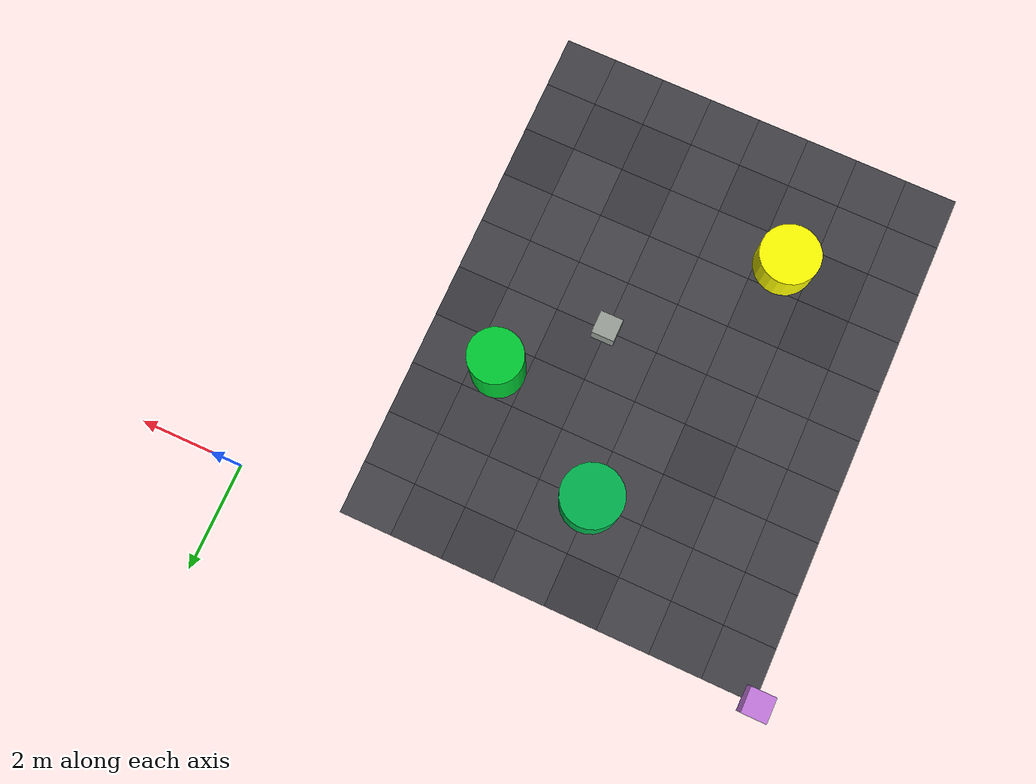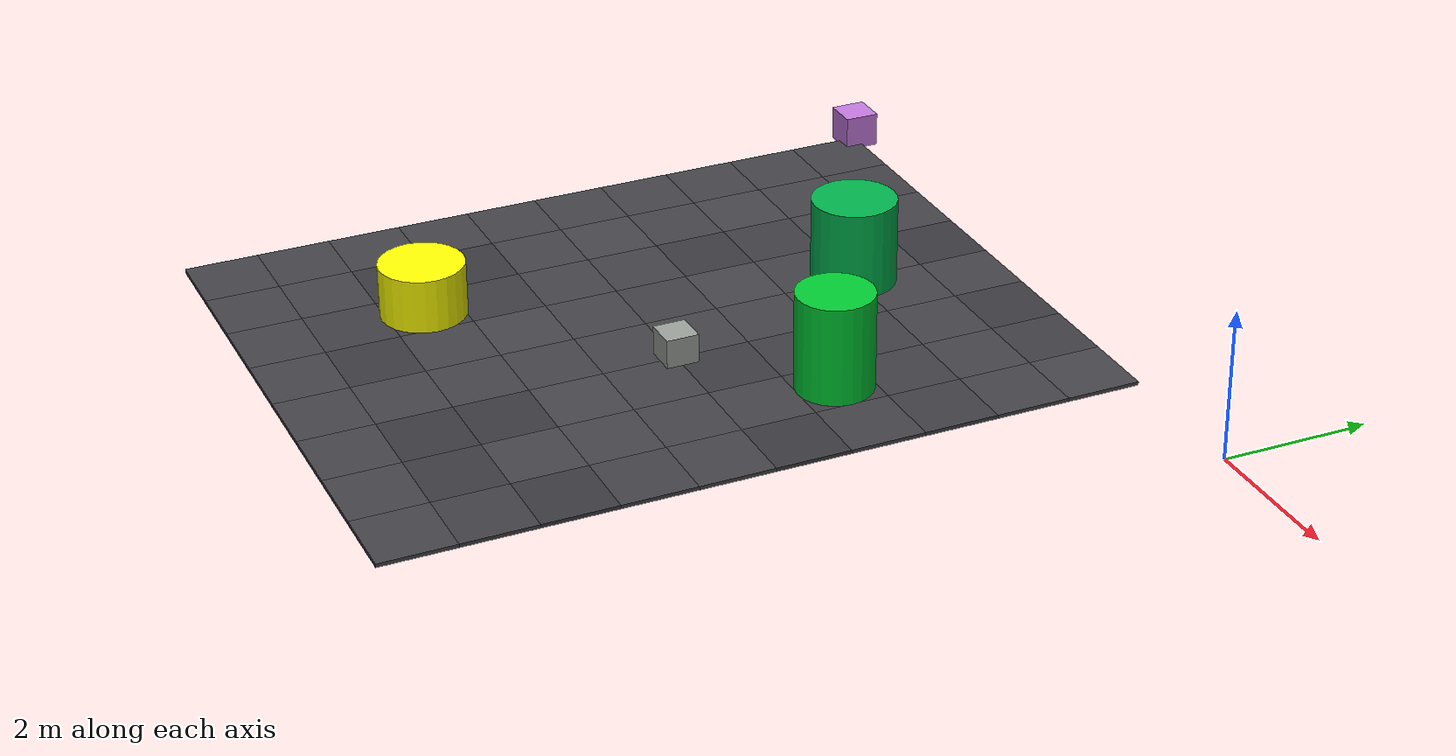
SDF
<sdf version="1.9">
 <world name="competition_world">
  <model name="t_00_00">
   <static>true</static>
   <pose>-9.500 -9.500 0.025 0 0 0</pose>
   <link name="link">
    <collision name="c"><geometry><box><size>1.00 1.00 0.05</size></box></geometry></collision>
    <visual name="v">
     <geometry><box><size>1.00 1.00 0.05</size></box></geometry>
     <material>
      <ambient>0.260 0.260 0.280 1</ambient>
      <diffuse>0.260 0.260 0.280 1</diffuse>
      <specular>0.060 0.060 0.060 1</specular>
     </material>
    </visual>
   </link>
  </model>
  <model name="t_00_01">
   <static>true</static>
   <pose>-8.500 -9.500 0.025 0 0 0</pose>
   <link name="link">
    <collision name="c"><geometry><box><size>1.00 1.00 0.05</size></box></geometry></collision>
    <visual name="v">
     <geometry><box><size>1.00 1.00 0.05</size></box></geometry>
     <material>
      <ambient>0.260 0.260 0.280 1</ambient>
      <diffuse>0.260 0.260 0.280 1</diffuse>
      <specular>0.060 0.060 0.060 1</specular>
     </material>
    </visual>
   </link>
  </model>
  <model name="t_00_02">
   <static>true</static>
   <pose>-7.500 -9.500 0.025 0 0 0</pose>
   <link name="link">
    <collision name="c"><geometry><box><size>1.00 1.00 0.05</size></box></geometry></collision>
    <visual name="v">
     <geometry><box><size>1.00 1.00 0.05</size></box></geometry>
     <material>
      <ambient>0.260 0.260 0.280 1</ambient>
      <diffuse>0.260 0.260 0.280 1</diffuse>
      <specular>0.060 0.060 0.060 1</specular>
     </material>
    </visual>
   </link>
  </model>
  <model name="t_00_03">
   <static>true</static>
   <pose>-6.500 -9.500 0.025 0 0 0</pose>
   <link name="link">
    <collision name="c"><geometry><box><size>1.00 1.00 0.05</size></box></geometry></collision>
    <visual name="v">
     <geometry><box><size>1.00 1.00 0.05</size></box></geometry>
     <material>
      <ambient>0.260 0.260 0.280 1</ambient>
      <diffuse>0.260 0.260 0.280 1</diffuse>
      <specular>0.060 0.060 0.060 1</specular>
     </material>
    </visual>
   </link>
  </model>
  <model name="t_00_04">
   <static>true</static>
   <pose>-5.500 -9.500 0.025 0 0 0</pose>
   <link name="link">
    <collision name="c"><geometry><box><size>1.00 1.00 0.05</size></box></geometry></collision>
    <visual name="v">
     <geometry><box><size>1.00 1.00 0.05</size></box></geometry>
     <material>
      <ambient>0.260 0.260 0.280 1</ambient>
      <diffuse>0.260 0.260 0.280 1</diffuse>
      <specular>0.060 0.060 0.060 1</specular>
     </material>
    </visual>
   </link>
  </model>
  <model name="t_00_05">
   <static>true</static>
   <pose>-4.500 -9.500 0.025 0 0 0</pose>
   <link name="link">
    <collision name="c"><geometry><box><size>1.00 1.00 0.05</size></box></geometry></collision>
    <visual name="v">
     <geometry><box><size>1.00 1.00 0.05</size></box></geometry>
     <material>
      <ambient>0.260 0.260 0.280 1</ambient>
      <diffuse>0.260 0.260 0.280 1</diffuse>
      <specular>0.060 0.060 0.060 1</specular>
     </material>
    </visual>
   </link>
  </model>
  <model name="t_00_06">
   <static>true</static>
   <pose>-3.500 -9.500 0.025 0 0 0</pose>
   <link name="link">
    <collision name="c"><geometry><box><size>1.00 1.00 0.05</size></box></geometry></collision>
    <visual name="v">
     <geometry><box><size>1.00 1.00 0.05</size></box></geometry>
     <material>
      <ambient>0.260 0.260 0.280 1</ambient>
      <diffuse>0.260 0.260 0.280 1</diffuse>
      <specular>0.060 0.060 0.060 1</specular>
     </material>
    </visual>
   </link>
  </model>
  <model name="t_00_07">
   <static>true</static>
   <pose>-2.500 -9.500 0.025 0 0 0</pose>
   <link name="link">
    <collision name="c"><geometry><box><size>1.00 1.00 0.05</size></box></geometry></collision>
    <visual name="v">
     <geometry><box><size>1.00 1.00 0.05</size></box></geometry>
     <material>
      <ambient>0.260 0.260 0.280 1</ambient>
      <diffuse>0.260 0.260 0.280 1</diffuse>
      <specular>0.060 0.060 0.060 1</specular>
     </material>
    </visual>
   </link>
  </model>
  <model name="t_01_00">
   <static>true</static>
   <pose>-9.500 -8.500 0.025 0 0 0</pose>
   <link name="link">
    <collision name="c"><geometry><box><size>1.00 1.00 0.05</size></box></geometry></collision>
    <visual name="v">
     <geometry><box><size>1.00 1.00 0.05</size></box></geometry>
     <material>
      <ambient>0.260 0.260 0.280 1</ambient>
      <diffuse>0.260 0.260 0.280 1</diffuse>
      <specular>0.060 0.060 0.060 1</specular>
     </material>
    </visual>
   </link>
  </model>
  <model name="t_01_01">
   <static>true</static>
   <pose>-8.500 -8.500 0.025 0 0 0</pose>
   <link name="link">
    <collision name="c"><geometry><box><size>1.00 1.00 0.05</size></box></geometry></collision>
    <visual name="v">
     <geometry><box><size>1.00 1.00 0.05</size></box></geometry>
     <material>
      <ambient>0.259 0.259 0.279 1</ambient>
      <diffuse>0.259 0.259 0.279 1</diffuse>
      <specular>0.060 0.060 0.060 1</specular>
     </material>
    </visual>
   </link>
  </model>
  <model name="t_01_02">
   <static>true</static>
   <pose>-7.500 -8.500 0.025 0 0 0</pose>
   <link name="link">
    <collision name="c"><geometry><box><size>1.00 1.00 0.05</size></box></geometry></collision>
    <visual name="v">
     <geometry><box><size>1.00 1.00 0.05</size></box></geometry>
     <material>
      <ambient>0.247 0.247 0.267 1</ambient>
      <diffuse>0.247 0.247 0.267 1</diffuse>
      <specular>0.060 0.060 0.060 1</specular>
     </material>
    </visual>
   </link>
  </model>
  <model name="t_01_03">
   <static>true</static>
   <pose>-6.500 -8.500 0.025 0 0 0</pose>
   <link name="link">
    <collision name="c"><geometry><box><size>1.00 1.00 0.05</size></box></geometry></collision>
    <visual name="v">
     <geometry><box><size>1.00 1.00 0.05</size></box></geometry>
     <material>
      <ambient>0.230 0.230 0.250 1</ambient>
      <diffuse>0.230 0.230 0.250 1</diffuse>
      <specular>0.060 0.060 0.060 1</specular>
     </material>
    </visual>
   </link>
  </model>
  <model name="t_01_04">
   <static>true</static>
   <pose>-5.500 -8.500 0.025 0 0 0</pose>
   <link name="link">
    <collision name="c"><geometry><box><size>1.00 1.00 0.05</size></box></geometry></collision>
    <visual name="v">
     <geometry><box><size>1.00 1.00 0.05</size></box></geometry>
     <material>
      <ambient>0.260 0.260 0.280 1</ambient>
      <diffuse>0.260 0.260 0.280 1</diffuse>
      <specular>0.060 0.060 0.060 1</specular>
     </material>
    </visual>
   </link>
  </model>
  <model name="t_01_05">
   <static>true</static>
   <pose>-4.500 -8.500 0.025 0 0 0</pose>
   <link name="link">
    <collision name="c"><geometry><box><size>1.00 1.00 0.05</size></box></geometry></collision>
    <visual name="v">
     <geometry><box><size>1.00 1.00 0.05</size></box></geometry>
     <material>
      <ambient>0.224 0.224 0.244 1</ambient>
      <diffuse>0.224 0.224 0.244 1</diffuse>
      <specular>0.060 0.060 0.060 1</specular>
     </material>
    </visual>
   </link>
  </model>
  <model name="t_01_06">
   <static>true</static>
   <pose>-3.500 -8.500 0.025 0 0 0</pose>
   <link name="link">
    <collision name="c"><geometry><box><size>1.00 1.00 0.05</size></box></geometry></collision>
    <visual name="v">
     <geometry><box><size>1.00 1.00 0.05</size></box></geometry>
     <material>
      <ambient>0.230 0.230 0.250 1</ambient>
      <diffuse>0.230 0.230 0.250 1</diffuse>
      <specular>0.060 0.060 0.060 1</specular>
     </material>
    </visual>
   </link>
  </model>
  <model name="t_01_07">
   <static>true</static>
   <pose>-2.500 -8.500 0.025 0 0 0</pose>
   <link name="link">
    <collision name="c"><geometry><box><size>1.00 1.00 0.05</size></box></geometry></collision>
    <visual name="v">
     <geometry><box><size>1.00 1.00 0.05</size></box></geometry>
     <material>
      <ambient>0.248 0.248 0.268 1</ambient>
      <diffuse>0.248 0.248 0.268 1</diffuse>
      <specular>0.060 0.060 0.060 1</specular>
     </material>
    </visual>
   </link>
  </model>
  <model name="t_02_00">
   <static>true</static>
   <pose>-9.500 -7.500 0.025 0 0 0</pose>
   <link name="link">
    <collision name="c"><geometry><box><size>1.00 1.00 0.05</size></box></geometry></collision>
    <visual name="v">
     <geometry><box><size>1.00 1.00 0.05</size></box></geometry>
     <material>
      <ambient>0.260 0.260 0.280 1</ambient>
      <diffuse>0.260 0.260 0.280 1</diffuse>
      <specular>0.060 0.060 0.060 1</specular>
     </material>
    </visual>
   </link>
  </model>
  <model name="t_02_01">
   <static>true</static>
   <pose>-8.500 -7.500 0.025 0 0 0</pose>
   <link name="link">
    <collision name="c"><geometry><box><size>1.00 1.00 0.05</size></box></geometry></collision>
    <visual name="v">
     <geometry><box><size>1.00 1.00 0.05</size></box></geometry>
     <material>
      <ambient>0.225 0.225 0.245 1</ambient>
      <diffuse>0.225 0.225 0.245 1</diffuse>
      <specular>0.060 0.060 0.060 1</specular>
     </material>
    </visual>
   </link>
  </model>
  <model name="t_02_02">
   <static>true</static>
   <pose>-7.500 -7.500 0.025 0 0 0</pose>
   <link name="link">
    <collision name="c"><geometry><box><size>1.00 1.00 0.05</size></box></geometry></collision>
    <visual name="v">
     <geometry><box><size>1.00 1.00 0.05</size></box></geometry>
     <material>
      <ambient>0.242 0.242 0.262 1</ambient>
      <diffuse>0.242 0.242 0.262 1</diffuse>
      <specular>0.060 0.060 0.060 1</specular>
     </material>
    </visual>
   </link>
  </model>
  <model name="t_02_03">
   <static>true</static>
   <pose>-6.500 -7.500 0.025 0 0 0</pose>
   <link name="link">
    <collision name="c"><geometry><box><size>1.00 1.00 0.05</size></box></geometry></collision>
    <visual name="v">
     <geometry><box><size>1.00 1.00 0.05</size></box></geometry>
     <material>
      <ambient>0.259 0.259 0.279 1</ambient>
      <diffuse>0.259 0.259 0.279 1</diffuse>
      <specular>0.060 0.060 0.060 1</specular>
     </material>
    </visual>
   </link>
  </model>
  <model name="t_02_04">
   <static>true</static>
   <pose>-5.500 -7.500 0.025 0 0 0</pose>
   <link name="link">
    <collision name="c"><geometry><box><size>1.00 1.00 0.05</size></box></geometry></collision>
    <visual name="v">
     <geometry><box><size>1.00 1.00 0.05</size></box></geometry>
     <material>
      <ambient>0.260 0.260 0.280 1</ambient>
      <diffuse>0.260 0.260 0.280 1</diffuse>
      <specular>0.060 0.060 0.060 1</specular>
     </material>
    </visual>
   </link>
  </model>
  <model name="t_02_05">
   <static>true</static>
   <pose>-4.500 -7.500 0.025 0 0 0</pose>
   <link name="link">
    <collision name="c"><geometry><box><size>1.00 1.00 0.05</size></box></geometry></collision>
    <visual name="v">
     <geometry><box><size>1.00 1.00 0.05</size></box></geometry>
     <material>
      <ambient>0.226 0.226 0.246 1</ambient>
      <diffuse>0.226 0.226 0.246 1</diffuse>
      <specular>0.060 0.060 0.060 1</specular>
     </material>
    </visual>
   </link>
  </model>
  <model name="t_02_06">
   <static>true</static>
   <pose>-3.500 -7.500 0.025 0 0 0</pose>
   <link name="link">
    <collision name="c"><geometry><box><size>1.00 1.00 0.05</size></box></geometry></collision>
    <visual name="v">
     <geometry><box><size>1.00 1.00 0.05</size></box></geometry>
     <material>
      <ambient>0.267 0.267 0.287 1</ambient>
      <diffuse>0.267 0.267 0.287 1</diffuse>
      <specular>0.060 0.060 0.060 1</specular>
     </material>
    </visual>
   </link>
  </model>
  <model name="t_02_07">
   <static>true</static>
   <pose>-2.500 -7.500 0.025 0 0 0</pose>
   <link name="link">
    <collision name="c"><geometry><box><size>1.00 1.00 0.05</size></box></geometry></collision>
    <visual name="v">
     <geometry><box><size>1.00 1.00 0.05</size></box></geometry>
     <material>
      <ambient>0.223 0.223 0.243 1</ambient>
      <diffuse>0.223 0.223 0.243 1</diffuse>
      <specular>0.060 0.060 0.060 1</specular>
     </material>
    </visual>
   </link>
  </model>
  <model name="t_03_00">
   <static>true</static>
   <pose>-9.500 -6.500 0.025 0 0 0</pose>
   <link name="link">
    <collision name="c"><geometry><box><size>1.00 1.00 0.05</size></box></geometry></collision>
    <visual name="v">
     <geometry><box><size>1.00 1.00 0.05</size></box></geometry>
     <material>
      <ambient>0.260 0.260 0.280 1</ambient>
      <diffuse>0.260 0.260 0.280 1</diffuse>
      <specular>0.060 0.060 0.060 1</specular>
     </material>
    </visual>
   </link>
  </model>
  <model name="t_03_01">
   <static>true</static>
   <pose>-8.500 -6.500 0.025 0 0 0</pose>
   <link name="link">
    <collision name="c"><geometry><box><size>1.00 1.00 0.05</size></box></geometry></collision>
    <visual name="v">
     <geometry><box><size>1.00 1.00 0.05</size></box></geometry>
     <material>
      <ambient>0.222 0.222 0.242 1</ambient>
      <diffuse>0.222 0.222 0.242 1</diffuse>
      <specular>0.060 0.060 0.060 1</specular>
     </material>
    </visual>
   </link>
  </model>
  <model name="t_03_02">
   <static>true</static>
   <pose>-7.500 -6.500 0.025 0 0 0</pose>
   <link name="link">
    <collision name="c"><geometry><box><size>1.00 1.00 0.05</size></box></geometry></collision>
    <visual name="v">
     <geometry><box><size>1.00 1.00 0.05</size></box></geometry>
     <material>
      <ambient>0.238 0.238 0.258 1</ambient>
      <diffuse>0.238 0.238 0.258 1</diffuse>
      <specular>0.060 0.060 0.060 1</specular>
     </material>
    </visual>
   </link>
  </model>
  <model name="t_03_03">
   <static>true</static>
   <pose>-6.500 -6.500 0.025 0 0 0</pose>
   <link name="link">
    <collision name="c"><geometry><box><size>1.00 1.00 0.05</size></box></geometry></collision>
    <visual name="v">
     <geometry><box><size>1.00 1.00 0.05</size></box></geometry>
     <material>
      <ambient>0.269 0.269 0.289 1</ambient>
      <diffuse>0.269 0.269 0.289 1</diffuse>
      <specular>0.060 0.060 0.060 1</specular>
     </material>
    </visual>
   </link>
  </model>
  <model name="t_03_04">
   <static>true</static>
   <pose>-5.500 -6.500 0.025 0 0 0</pose>
   <link name="link">
    <collision name="c"><geometry><box><size>1.00 1.00 0.05</size></box></geometry></collision>
    <visual name="v">
     <geometry><box><size>1.00 1.00 0.05</size></box></geometry>
     <material>
      <ambient>0.260 0.260 0.280 1</ambient>
      <diffuse>0.260 0.260 0.280 1</diffuse>
      <specular>0.060 0.060 0.060 1</specular>
     </material>
    </visual>
   </link>
  </model>
  <model name="t_03_05">
   <static>true</static>
   <pose>-4.500 -6.500 0.025 0 0 0</pose>
   <link name="link">
    <collision name="c"><geometry><box><size>1.00 1.00 0.05</size></box></geometry></collision>
    <visual name="v">
     <geometry><box><size>1.00 1.00 0.05</size></box></geometry>
     <material>
      <ambient>0.269 0.269 0.289 1</ambient>
      <diffuse>0.269 0.269 0.289 1</diffuse>
      <specular>0.060 0.060 0.060 1</specular>
     </material>
    </visual>
   </link>
  </model>
  <model name="t_03_06">
   <static>true</static>
   <pose>-3.500 -6.500 0.025 0 0 0</pose>
   <link name="link">
    <collision name="c"><geometry><box><size>1.00 1.00 0.05</size></box></geometry></collision>
    <visual name="v">
     <geometry><box><size>1.00 1.00 0.05</size></box></geometry>
     <material>
      <ambient>0.265 0.265 0.285 1</ambient>
      <diffuse>0.265 0.265 0.285 1</diffuse>
      <specular>0.060 0.060 0.060 1</specular>
     </material>
    </visual>
   </link>
  </model>
  <model name="t_03_07">
   <static>true</static>
   <pose>-2.500 -6.500 0.025 0 0 0</pose>
   <link name="link">
    <collision name="c"><geometry><box><size>1.00 1.00 0.05</size></box></geometry></collision>
    <visual name="v">
     <geometry><box><size>1.00 1.00 0.05</size></box></geometry>
     <material>
      <ambient>0.254 0.254 0.274 1</ambient>
      <diffuse>0.254 0.254 0.274 1</diffuse>
      <specular>0.060 0.060 0.060 1</specular>
     </material>
    </visual>
   </link>
  </model>
  <model name="t_04_00">
   <static>true</static>
   <pose>-9.500 -5.500 0.025 0 0 0</pose>
   <link name="link">
    <collision name="c"><geometry><box><size>1.00 1.00 0.05</size></box></geometry></collision>
    <visual name="v">
     <geometry><box><size>1.00 1.00 0.05</size></box></geometry>
     <material>
      <ambient>0.260 0.260 0.280 1</ambient>
      <diffuse>0.260 0.260 0.280 1</diffuse>
      <specular>0.060 0.060 0.060 1</specular>
     </material>
    </visual>
   </link>
  </model>
  <model name="t_04_01">
   <static>true</static>
   <pose>-8.500 -5.500 0.025 0 0 0</pose>
   <link name="link">
    <collision name="c"><geometry><box><size>1.00 1.00 0.05</size></box></geometry></collision>
    <visual name="v">
     <geometry><box><size>1.00 1.00 0.05</size></box></geometry>
     <material>
      <ambient>0.260 0.260 0.280 1</ambient>
      <diffuse>0.260 0.260 0.280 1</diffuse>
      <specular>0.060 0.060 0.060 1</specular>
     </material>
    </visual>
   </link>
  </model>
  <model name="t_04_02">
   <static>true</static>
   <pose>-7.500 -5.500 0.025 0 0 0</pose>
   <link name="link">
    <collision name="c"><geometry><box><size>1.00 1.00 0.05</size></box></geometry></collision>
    <visual name="v">
     <geometry><box><size>1.00 1.00 0.05</size></box></geometry>
     <material>
      <ambient>0.260 0.260 0.280 1</ambient>
      <diffuse>0.260 0.260 0.280 1</diffuse>
      <specular>0.060 0.060 0.060 1</specular>
     </material>
    </visual>
   </link>
  </model>
  <model name="t_04_03">
   <static>true</static>
   <pose>-6.500 -5.500 0.025 0 0 0</pose>
   <link name="link">
    <collision name="c"><geometry><box><size>1.00 1.00 0.05</size></box></geometry></collision>
    <visual name="v">
     <geometry><box><size>1.00 1.00 0.05</size></box></geometry>
     <material>
      <ambient>0.260 0.260 0.280 1</ambient>
      <diffuse>0.260 0.260 0.280 1</diffuse>
      <specular>0.060 0.060 0.060 1</specular>
     </material>
    </visual>
   </link>
  </model>
  <model name="t_04_04">
   <static>true</static>
   <pose>-5.500 -5.500 0.025 0 0 0</pose>
   <link name="link">
    <collision name="c"><geometry><box><size>1.00 1.00 0.05</size></box></geometry></collision>
    <visual name="v">
     <geometry><box><size>1.00 1.00 0.05</size></box></geometry>
     <material>
      <ambient>0.260 0.260 0.280 1</ambient>
      <diffuse>0.260 0.260 0.280 1</diffuse>
      <specular>0.060 0.060 0.060 1</specular>
     </material>
    </visual>
   </link>
  </model>
  <model name="t_04_05">
   <static>true</static>
   <pose>-4.500 -5.500 0.025 0 0 0</pose>
   <link name="link">
    <collision name="c"><geometry><box><size>1.00 1.00 0.05</size></box></geometry></collision>
    <visual name="v">
     <geometry><box><size>1.00 1.00 0.05</size></box></geometry>
     <material>
      <ambient>0.260 0.260 0.280 1</ambient>
      <diffuse>0.260 0.260 0.280 1</diffuse>
      <specular>0.060 0.060 0.060 1</specular>
     </material>
    </visual>
   </link>
  </model>
  <model name="t_04_06">
   <static>true</static>
   <pose>-3.500 -5.500 0.025 0 0 0</pose>
   <link name="link">
    <collision name="c"><geometry><box><size>1.00 1.00 0.05</size></box></geometry></collision>
    <visual name="v">
     <geometry><box><size>1.00 1.00 0.05</size></box></geometry>
     <material>
      <ambient>0.260 0.260 0.280 1</ambient>
      <diffuse>0.260 0.260 0.280 1</diffuse>
      <specular>0.060 0.060 0.060 1</specular>
     </material>
    </visual>
   </link>
  </model>
  <model name="t_04_07">
   <static>true</static>
   <pose>-2.500 -5.500 0.025 0 0 0</pose>
   <link name="link">
    <collision name="c"><geometry><box><size>1.00 1.00 0.05</size></box></geometry></collision>
    <visual name="v">
     <geometry><box><size>1.00 1.00 0.05</size></box></geometry>
     <material>
      <ambient>0.260 0.260 0.280 1</ambient>
      <diffuse>0.260 0.260 0.280 1</diffuse>
      <specular>0.060 0.060 0.060 1</specular>
     </material>
    </visual>
   </link>
  </model>
  <model name="t_05_00">
   <static>true</static>
   <pose>-9.500 -4.500 0.025 0 0 0</pose>
   <link name="link">
    <collision name="c"><geometry><box><size>1.00 1.00 0.05</size></box></geometry></collision>
    <visual name="v">
     <geometry><box><size>1.00 1.00 0.05</size></box></geometry>
     <material>
      <ambient>0.260 0.260 0.280 1</ambient>
      <diffuse>0.260 0.260 0.280 1</diffuse>
      <specular>0.060 0.060 0.060 1</specular>
     </material>
    </visual>
   </link>
  </model>
  <model name="t_05_01">
   <static>true</static>
   <pose>-8.500 -4.500 0.025 0 0 0</pose>
   <link name="link">
    <collision name="c"><geometry><box><size>1.00 1.00 0.05</size></box></geometry></collision>
    <visual name="v">
     <geometry><box><size>1.00 1.00 0.05</size></box></geometry>
     <material>
      <ambient>0.269 0.269 0.289 1</ambient>
      <diffuse>0.269 0.269 0.289 1</diffuse>
      <specular>0.060 0.060 0.060 1</specular>
     </material>
    </visual>
   </link>
  </model>
  <model name="t_05_02">
   <static>true</static>
   <pose>-7.500 -4.500 0.025 0 0 0</pose>
   <link name="link">
    <collision name="c"><geometry><box><size>1.00 1.00 0.05</size></box></geometry></collision>
    <visual name="v">
     <geometry><box><size>1.00 1.00 0.05</size></box></geometry>
     <material>
      <ambient>0.256 0.256 0.276 1</ambient>
      <diffuse>0.256 0.256 0.276 1</diffuse>
      <specular>0.060 0.060 0.060 1</specular>
     </material>
    </visual>
   </link>
  </model>
  <model name="t_05_03">
   <static>true</static>
   <pose>-6.500 -4.500 0.025 0 0 0</pose>
   <link name="link">
    <collision name="c"><geometry><box><size>1.00 1.00 0.05</size></box></geometry></collision>
    <visual name="v">
     <geometry><box><size>1.00 1.00 0.05</size></box></geometry>
     <material>
      <ambient>0.250 0.250 0.270 1</ambient>
      <diffuse>0.250 0.250 0.270 1</diffuse>
      <specular>0.060 0.060 0.060 1</specular>
     </material>
    </visual>
   </link>
  </model>
  <model name="t_05_04">
   <static>true</static>
   <pose>-5.500 -4.500 0.025 0 0 0</pose>
   <link name="link">
    <collision name="c"><geometry><box><size>1.00 1.00 0.05</size></box></geometry></collision>
    <visual name="v">
     <geometry><box><size>1.00 1.00 0.05</size></box></geometry>
     <material>
      <ambient>0.260 0.260 0.280 1</ambient>
      <diffuse>0.260 0.260 0.280 1</diffuse>
      <specular>0.060 0.060 0.060 1</specular>
     </material>
    </visual>
   </link>
  </model>
  <model name="t_05_05">
   <static>true</static>
   <pose>-4.500 -4.500 0.025 0 0 0</pose>
   <link name="link">
    <collision name="c"><geometry><box><size>1.00 1.00 0.05</size></box></geometry></collision>
    <visual name="v">
     <geometry><box><size>1.00 1.00 0.05</size></box></geometry>
     <material>
      <ambient>0.233 0.233 0.253 1</ambient>
      <diffuse>0.233 0.233 0.253 1</diffuse>
      <specular>0.060 0.060 0.060 1</specular>
     </material>
    </visual>
   </link>
  </model>
  <model name="t_05_06">
   <static>true</static>
   <pose>-3.500 -4.500 0.025 0 0 0</pose>
   <link name="link">
    <collision name="c"><geometry><box><size>1.00 1.00 0.05</size></box></geometry></collision>
    <visual name="v">
     <geometry><box><size>1.00 1.00 0.05</size></box></geometry>
     <material>
      <ambient>0.262 0.262 0.282 1</ambient>
      <diffuse>0.262 0.262 0.282 1</diffuse>
      <specular>0.060 0.060 0.060 1</specular>
     </material>
    </visual>
   </link>
  </model>
  <model name="t_05_07">
   <static>true</static>
   <pose>-2.500 -4.500 0.025 0 0 0</pose>
   <link name="link">
    <collision name="c"><geometry><box><size>1.00 1.00 0.05</size></box></geometry></collision>
    <visual name="v">
     <geometry><box><size>1.00 1.00 0.05</size></box></geometry>
     <material>
      <ambient>0.225 0.225 0.245 1</ambient>
      <diffuse>0.225 0.225 0.245 1</diffuse>
      <specular>0.060 0.060 0.060 1</specular>
     </material>
    </visual>
   </link>
  </model>
  <model name="t_06_00">
   <static>true</static>
   <pose>-9.500 -3.500 0.025 0 0 0</pose>
   <link name="link">
    <collision name="c"><geometry><box><size>1.00 1.00 0.05</size></box></geometry></collision>
    <visual name="v">
     <geometry><box><size>1.00 1.00 0.05</size></box></geometry>
     <material>
      <ambient>0.260 0.260 0.280 1</ambient>
      <diffuse>0.260 0.260 0.280 1</diffuse>
      <specular>0.060 0.060 0.060 1</specular>
     </material>
    </visual>
   </link>
  </model>
  <model name="t_06_01">
   <static>true</static>
   <pose>-8.500 -3.500 0.025 0 0 0</pose>
   <link name="link">
    <collision name="c"><geometry><box><size>1.00 1.00 0.05</size></box></geometry></collision>
    <visual name="v">
     <geometry><box><size>1.00 1.00 0.05</size></box></geometry>
     <material>
      <ambient>0.259 0.259 0.279 1</ambient>
      <diffuse>0.259 0.259 0.279 1</diffuse>
      <specular>0.060 0.060 0.060 1</specular>
     </material>
    </visual>
   </link>
  </model>
  <model name="t_06_02">
   <static>true</static>
   <pose>-7.500 -3.500 0.025 0 0 0</pose>
   <link name="link">
    <collision name="c"><geometry><box><size>1.00 1.00 0.05</size></box></geometry></collision>
    <visual name="v">
     <geometry><box><size>1.00 1.00 0.05</size></box></geometry>
     <material>
      <ambient>0.228 0.228 0.248 1</ambient>
      <diffuse>0.228 0.228 0.248 1</diffuse>
      <specular>0.060 0.060 0.060 1</specular>
     </material>
    </visual>
   </link>
  </model>
  <model name="t_06_03">
   <static>true</static>
   <pose>-6.500 -3.500 0.025 0 0 0</pose>
   <link name="link">
    <collision name="c"><geometry><box><size>1.00 1.00 0.05</size></box></geometry></collision>
    <visual name="v">
     <geometry><box><size>1.00 1.00 0.05</size></box></geometry>
     <material>
      <ambient>0.268 0.268 0.288 1</ambient>
      <diffuse>0.268 0.268 0.288 1</diffuse>
      <specular>0.060 0.060 0.060 1</specular>
     </material>
    </visual>
   </link>
  </model>
  <model name="t_06_04">
   <static>true</static>
   <pose>-5.500 -3.500 0.025 0 0 0</pose>
   <link name="link">
    <collision name="c"><geometry><box><size>1.00 1.00 0.05</size></box></geometry></collision>
    <visual name="v">
     <geometry><box><size>1.00 1.00 0.05</size></box></geometry>
     <material>
      <ambient>0.260 0.260 0.280 1</ambient>
      <diffuse>0.260 0.260 0.280 1</diffuse>
      <specular>0.060 0.060 0.060 1</specular>
     </material>
    </visual>
   </link>
  </model>
  <model name="t_06_05">
   <static>true</static>
   <pose>-4.500 -3.500 0.025 0 0 0</pose>
   <link name="link">
    <collision name="c"><geometry><box><size>1.00 1.00 0.05</size></box></geometry></collision>
    <visual name="v">
     <geometry><box><size>1.00 1.00 0.05</size></box></geometry>
     <material>
      <ambient>0.243 0.243 0.263 1</ambient>
      <diffuse>0.243 0.243 0.263 1</diffuse>
      <specular>0.060 0.060 0.060 1</specular>
     </material>
    </visual>
   </link>
  </model>
  <model name="t_06_06">
   <static>true</static>
   <pose>-3.500 -3.500 0.025 0 0 0</pose>
   <link name="link">
    <collision name="c"><geometry><box><size>1.00 1.00 0.05</size></box></geometry></collision>
    <visual name="v">
     <geometry><box><size>1.00 1.00 0.05</size></box></geometry>
     <material>
      <ambient>0.244 0.244 0.264 1</ambient>
      <diffuse>0.244 0.244 0.264 1</diffuse>
      <specular>0.060 0.060 0.060 1</specular>
     </material>
    </visual>
   </link>
  </model>
  <model name="t_06_07">
   <static>true</static>
   <pose>-2.500 -3.500 0.025 0 0 0</pose>
   <link name="link">
    <collision name="c"><geometry><box><size>1.00 1.00 0.05</size></box></geometry></collision>
    <visual name="v">
     <geometry><box><size>1.00 1.00 0.05</size></box></geometry>
     <material>
      <ambient>0.255 0.255 0.275 1</ambient>
      <diffuse>0.255 0.255 0.275 1</diffuse>
      <specular>0.060 0.060 0.060 1</specular>
     </material>
    </visual>
   </link>
  </model>
  <model name="t_07_00">
   <static>true</static>
   <pose>-9.500 -2.500 0.025 0 0 0</pose>
   <link name="link">
    <collision name="c"><geometry><box><size>1.00 1.00 0.05</size></box></geometry></collision>
    <visual name="v">
     <geometry><box><size>1.00 1.00 0.05</size></box></geometry>
     <material>
      <ambient>0.260 0.260 0.280 1</ambient>
      <diffuse>0.260 0.260 0.280 1</diffuse>
      <specular>0.060 0.060 0.060 1</specular>
     </material>
    </visual>
   </link>
  </model>
  <model name="t_07_01">
   <static>true</static>
   <pose>-8.500 -2.500 0.025 0 0 0</pose>
   <link name="link">
    <collision name="c"><geometry><box><size>1.00 1.00 0.05</size></box></geometry></collision>
    <visual name="v">
     <geometry><box><size>1.00 1.00 0.05</size></box></geometry>
     <material>
      <ambient>0.270 0.270 0.290 1</ambient>
      <diffuse>0.270 0.270 0.290 1</diffuse>
      <specular>0.060 0.060 0.060 1</specular>
     </material>
    </visual>
   </link>
  </model>
  <model name="t_07_02">
   <static>true</static>
   <pose>-7.500 -2.500 0.025 0 0 0</pose>
   <link name="link">
    <collision name="c"><geometry><box><size>1.00 1.00 0.05</size></box></geometry></collision>
    <visual name="v">
     <geometry><box><size>1.00 1.00 0.05</size></box></geometry>
     <material>
      <ambient>0.244 0.244 0.264 1</ambient>
      <diffuse>0.244 0.244 0.264 1</diffuse>
      <specular>0.060 0.060 0.060 1</specular>
     </material>
    </visual>
   </link>
  </model>
  <model name="t_07_03">
   <static>true</static>
   <pose>-6.500 -2.500 0.025 0 0 0</pose>
   <link name="link">
    <collision name="c"><geometry><box><size>1.00 1.00 0.05</size></box></geometry></collision>
    <visual name="v">
     <geometry><box><size>1.00 1.00 0.05</size></box></geometry>
     <material>
      <ambient>0.257 0.257 0.277 1</ambient>
      <diffuse>0.257 0.257 0.277 1</diffuse>
      <specular>0.060 0.060 0.060 1</specular>
     </material>
    </visual>
   </link>
  </model>
  <model name="t_07_04">
   <static>true</static>
   <pose>-5.500 -2.500 0.025 0 0 0</pose>
   <link name="link">
    <collision name="c"><geometry><box><size>1.00 1.00 0.05</size></box></geometry></collision>
    <visual name="v">
     <geometry><box><size>1.00 1.00 0.05</size></box></geometry>
     <material>
      <ambient>0.260 0.260 0.280 1</ambient>
      <diffuse>0.260 0.260 0.280 1</diffuse>
      <specular>0.060 0.060 0.060 1</specular>
     </material>
    </visual>
   </link>
  </model>
  <model name="t_07_05">
   <static>true</static>
   <pose>-4.500 -2.500 0.025 0 0 0</pose>
   <link name="link">
    <collision name="c"><geometry><box><size>1.00 1.00 0.05</size></box></geometry></collision>
    <visual name="v">
     <geometry><box><size>1.00 1.00 0.05</size></box></geometry>
     <material>
      <ambient>0.246 0.246 0.266 1</ambient>
      <diffuse>0.246 0.246 0.266 1</diffuse>
      <specular>0.060 0.060 0.060 1</specular>
     </material>
    </visual>
   </link>
  </model>
  <model name="t_07_06">
   <static>true</static>
   <pose>-3.500 -2.500 0.025 0 0 0</pose>
   <link name="link">
    <collision name="c"><geometry><box><size>1.00 1.00 0.05</size></box></geometry></collision>
    <visual name="v">
     <geometry><box><size>1.00 1.00 0.05</size></box></geometry>
     <material>
      <ambient>0.245 0.245 0.265 1</ambient>
      <diffuse>0.245 0.245 0.265 1</diffuse>
      <specular>0.060 0.060 0.060 1</specular>
     </material>
    </visual>
   </link>
  </model>
  <model name="t_07_07">
   <static>true</static>
   <pose>-2.500 -2.500 0.025 0 0 0</pose>
   <link name="link">
    <collision name="c"><geometry><box><size>1.00 1.00 0.05</size></box></geometry></collision>
    <visual name="v">
     <geometry><box><size>1.00 1.00 0.05</size></box></geometry>
     <material>
      <ambient>0.240 0.240 0.260 1</ambient>
      <diffuse>0.240 0.240 0.260 1</diffuse>
      <specular>0.060 0.060 0.060 1</specular>
     </material>
    </visual>
   </link>
  </model>
  <model name="t_08_00">
   <static>true</static>
   <pose>-9.500 -1.500 0.025 0 0 0</pose>
   <link name="link">
    <collision name="c"><geometry><box><size>1.00 1.00 0.05</size></box></geometry></collision>
    <visual name="v">
     <geometry><box><size>1.00 1.00 0.05</size></box></geometry>
     <material>
      <ambient>0.260 0.260 0.280 1</ambient>
      <diffuse>0.260 0.260 0.280 1</diffuse>
      <specular>0.060 0.060 0.060 1</specular>
     </material>
    </visual>
   </link>
  </model>
  <model name="t_08_01">
   <static>true</static>
   <pose>-8.500 -1.500 0.025 0 0 0</pose>
   <link name="link">
    <collision name="c"><geometry><box><size>1.00 1.00 0.05</size></box></geometry></collision>
    <visual name="v">
     <geometry><box><size>1.00 1.00 0.05</size></box></geometry>
     <material>
      <ambient>0.260 0.260 0.280 1</ambient>
      <diffuse>0.260 0.260 0.280 1</diffuse>
      <specular>0.060 0.060 0.060 1</specular>
     </material>
    </visual>
   </link>
  </model>
  <model name="t_08_02">
   <static>true</static>
   <pose>-7.500 -1.500 0.025 0 0 0</pose>
   <link name="link">
    <collision name="c"><geometry><box><size>1.00 1.00 0.05</size></box></geometry></collision>
    <visual name="v">
     <geometry><box><size>1.00 1.00 0.05</size></box></geometry>
     <material>
      <ambient>0.260 0.260 0.280 1</ambient>
      <diffuse>0.260 0.260 0.280 1</diffuse>
      <specular>0.060 0.060 0.060 1</specular>
     </material>
    </visual>
   </link>
  </model>
  <model name="t_08_03">
   <static>true</static>
   <pose>-6.500 -1.500 0.025 0 0 0</pose>
   <link name="link">
    <collision name="c"><geometry><box><size>1.00 1.00 0.05</size></box></geometry></collision>
    <visual name="v">
     <geometry><box><size>1.00 1.00 0.05</size></box></geometry>
     <material>
      <ambient>0.260 0.260 0.280 1</ambient>
      <diffuse>0.260 0.260 0.280 1</diffuse>
      <specular>0.060 0.060 0.060 1</specular>
     </material>
    </visual>
   </link>
  </model>
  <model name="t_08_04">
   <static>true</static>
   <pose>-5.500 -1.500 0.025 0 0 0</pose>
   <link name="link">
    <collision name="c"><geometry><box><size>1.00 1.00 0.05</size></box></geometry></collision>
    <visual name="v">
     <geometry><box><size>1.00 1.00 0.05</size></box></geometry>
     <material>
      <ambient>0.260 0.260 0.280 1</ambient>
      <diffuse>0.260 0.260 0.280 1</diffuse>
      <specular>0.060 0.060 0.060 1</specular>
     </material>
    </visual>
   </link>
  </model>
  <model name="t_08_05">
   <static>true</static>
   <pose>-4.500 -1.500 0.025 0 0 0</pose>
   <link name="link">
    <collision name="c"><geometry><box><size>1.00 1.00 0.05</size></box></geometry></collision>
    <visual name="v">
     <geometry><box><size>1.00 1.00 0.05</size></box></geometry>
     <material>
      <ambient>0.260 0.260 0.280 1</ambient>
      <diffuse>0.260 0.260 0.280 1</diffuse>
      <specular>0.060 0.060 0.060 1</specular>
     </material>
    </visual>
   </link>
  </model>
  <model name="t_08_06">
   <static>true</static>
   <pose>-3.500 -1.500 0.025 0 0 0</pose>
   <link name="link">
    <collision name="c"><geometry><box><size>1.00 1.00 0.05</size></box></geometry></collision>
    <visual name="v">
     <geometry><box><size>1.00 1.00 0.05</size></box></geometry>
     <material>
      <ambient>0.260 0.260 0.280 1</ambient>
      <diffuse>0.260 0.260 0.280 1</diffuse>
      <specular>0.060 0.060 0.060 1</specular>
     </material>
    </visual>
   </link>
  </model>
  <model name="t_08_07">
   <static>true</static>
   <pose>-2.500 -1.500 0.025 0 0 0</pose>
   <link name="link">
    <collision name="c"><geometry><box><size>1.00 1.00 0.05</size></box></geometry></collision>
    <visual name="v">
     <geometry><box><size>1.00 1.00 0.05</size></box></geometry>
     <material>
      <ambient>0.260 0.260 0.280 1</ambient>
      <diffuse>0.260 0.260 0.280 1</diffuse>
      <specular>0.060 0.060 0.060 1</specular>
     </material>
    </visual>
   </link>
  </model>
  <model name="t_09_00">
   <static>true</static>
   <pose>-9.500 -0.500 0.025 0 0 0</pose>
   <link name="link">
    <collision name="c"><geometry><box><size>1.00 1.00 0.05</size></box></geometry></collision>
    <visual name="v">
     <geometry><box><size>1.00 1.00 0.05</size></box></geometry>
     <material>
      <ambient>0.260 0.260 0.280 1</ambient>
      <diffuse>0.260 0.260 0.280 1</diffuse>
      <specular>0.060 0.060 0.060 1</specular>
     </material>
    </visual>
   </link>
  </model>
  <model name="t_09_01">
   <static>true</static>
   <pose>-8.500 -0.500 0.025 0 0 0</pose>
   <link name="link">
    <collision name="c"><geometry><box><size>1.00 1.00 0.05</size></box></geometry></collision>
    <visual name="v">
     <geometry><box><size>1.00 1.00 0.05</size></box></geometry>
     <material>
      <ambient>0.251 0.251 0.271 1</ambient>
      <diffuse>0.251 0.251 0.271 1</diffuse>
      <specular>0.060 0.060 0.060 1</specular>
     </material>
    </visual>
   </link>
  </model>
  <model name="t_09_02">
   <static>true</static>
   <pose>-7.500 -0.500 0.025 0 0 0</pose>
   <link name="link">
    <collision name="c"><geometry><box><size>1.00 1.00 0.05</size></box></geometry></collision>
    <visual name="v">
     <geometry><box><size>1.00 1.00 0.05</size></box></geometry>
     <material>
      <ambient>0.262 0.262 0.282 1</ambient>
      <diffuse>0.262 0.262 0.282 1</diffuse>
      <specular>0.060 0.060 0.060 1</specular>
     </material>
    </visual>
   </link>
  </model>
  <model name="t_09_03">
   <static>true</static>
   <pose>-6.500 -0.500 0.025 0 0 0</pose>
   <link name="link">
    <collision name="c"><geometry><box><size>1.00 1.00 0.05</size></box></geometry></collision>
    <visual name="v">
     <geometry><box><size>1.00 1.00 0.05</size></box></geometry>
     <material>
      <ambient>0.222 0.222 0.242 1</ambient>
      <diffuse>0.222 0.222 0.242 1</diffuse>
      <specular>0.060 0.060 0.060 1</specular>
     </material>
    </visual>
   </link>
  </model>
  <model name="t_09_04">
   <static>true</static>
   <pose>-5.500 -0.500 0.025 0 0 0</pose>
   <link name="link">
    <collision name="c"><geometry><box><size>1.00 1.00 0.05</size></box></geometry></collision>
    <visual name="v">
     <geometry><box><size>1.00 1.00 0.05</size></box></geometry>
     <material>
      <ambient>0.260 0.260 0.280 1</ambient>
      <diffuse>0.260 0.260 0.280 1</diffuse>
      <specular>0.060 0.060 0.060 1</specular>
     </material>
    </visual>
   </link>
  </model>
  <model name="t_09_05">
   <static>true</static>
   <pose>-4.500 -0.500 0.025 0 0 0</pose>
   <link name="link">
    <collision name="c"><geometry><box><size>1.00 1.00 0.05</size></box></geometry></collision>
    <visual name="v">
     <geometry><box><size>1.00 1.00 0.05</size></box></geometry>
     <material>
      <ambient>0.227 0.227 0.247 1</ambient>
      <diffuse>0.227 0.227 0.247 1</diffuse>
      <specular>0.060 0.060 0.060 1</specular>
     </material>
    </visual>
   </link>
  </model>
  <model name="t_09_06">
   <static>true</static>
   <pose>-3.500 -0.500 0.025 0 0 0</pose>
   <link name="link">
    <collision name="c"><geometry><box><size>1.00 1.00 0.05</size></box></geometry></collision>
    <visual name="v">
     <geometry><box><size>1.00 1.00 0.05</size></box></geometry>
     <material>
      <ambient>0.240 0.240 0.260 1</ambient>
      <diffuse>0.240 0.240 0.260 1</diffuse>
      <specular>0.060 0.060 0.060 1</specular>
     </material>
    </visual>
   </link>
  </model>
  <model name="t_09_07">
   <static>true</static>
   <pose>-2.500 -0.500 0.025 0 0 0</pose>
   <link name="link">
    <collision name="c"><geometry><box><size>1.00 1.00 0.05</size></box></geometry></collision>
    <visual name="v">
     <geometry><box><size>1.00 1.00 0.05</size></box></geometry>
     <material>
      <ambient>0.269 0.269 0.289 1</ambient>
      <diffuse>0.269 0.269 0.289 1</diffuse>
      <specular>0.060 0.060 0.060 1</specular>
     </material>
    </visual>
   </link>
  </model>
  <model name="lm_03">
   <static>true</static>
   <pose>-3.50 -3.50 0.69 0 0 0</pose>
   <link name="link">
    <collision name="c">
     <geometry>
      <cylinder><radius>0.5130200471130663</radius><length>1.372464256302301</length></cylinder>
     </geometry>
    </collision>
    <visual name="v">
     <geometry>
      <cylinder><radius>0.5130200471130663</radius><length>1.372464256302301</length></cylinder>
     </geometry>
     <material>
      <ambient>0.000 0.800 0.200 1</ambient>
      <diffuse>0.000 0.800 0.200 1</diffuse>
      <specular>0.400 0.400 0.400 1</specular>
     </material>
    </visual>
   </link>
  </model>
  <model name="lm_07">
   <static>true</static>
   <pose>-7.50 -7.50 0.39 0 0 0</pose>
   <link name="link">
    <collision name="c">
     <geometry>
      <cylinder><radius>0.5757357119970501</radius><length>0.7837568225327212</length></cylinder>
     </geometry>
    </collision>
    <visual name="v">
     <geometry>
      <cylinder><radius>0.5757357119970501</radius><length>0.7837568225327212</length></cylinder>
     </geometry>
     <material>
      <ambient>1.000 1.000 0.000 1</ambient>
      <diffuse>1.000 1.000 0.000 1</diffuse>
      <specular>0.400 0.400 0.400 1</specular>
     </material>
    </visual>
   </link>
  </model>
  <model name="lm_19">
   <static>true</static>
   <pose>-6.00 -2.00 0.62 0 0 0</pose>
   <link name="link">
    <collision name="c">
     <geometry>
      <cylinder><radius>0.574644189710565</radius><length>1.2429750760926739</length></cylinder>
     </geometry>
    </collision>
    <visual name="v">
     <geometry>
      <cylinder><radius>0.574644189710565</radius><length>1.2429750760926739</length></cylinder>
     </geometry>
     <material>
      <ambient>0.000 0.700 0.300 1</ambient>
      <diffuse>0.000 0.700 0.300 1</diffuse>
      <specular>0.400 0.400 0.400 1</specular>
     </material>
    </visual>
   </link>
  </model>
  <model name="deco_00">
   <static>true</static>
   <pose>-10.00 0.00 0.24 0 0 0.000</pose>
   <link name="link">
    <collision name="c"><geometry><box><size>0.48 0.48 0.48</size></box></geometry></collision>
    <visual name="v">
     <geometry><box><size>0.48 0.48 0.48</size></box></geometry>
     <material>
      <ambient>0.774 0.477 0.878 1</ambient>
      <diffuse>0.774 0.477 0.878 1</diffuse>
      <specular>0.300 0.300 0.300 1</specular>
     </material>
    </visual>
   </link>
  </model>
  <model name="deco_04">
   <static>true</static>
   <pose>-5.00 -5.00 0.22 0 0 0.000</pose>
   <link name="link">
    <collision name="c"><geometry><box><size>0.44 0.44 0.44</size></box></geometry></collision>
    <visual name="v">
     <geometry><box><size>0.44 0.44 0.44</size></box></geometry>
     <material>
      <ambient>0.605 0.629 0.602 1</ambient>
      <diffuse>0.605 0.629 0.602 1</diffuse>
      <specular>0.300 0.300 0.300 1</specular>
     </material>
    </visual>
   </link>
  </model>
 </world>
</sdf>
